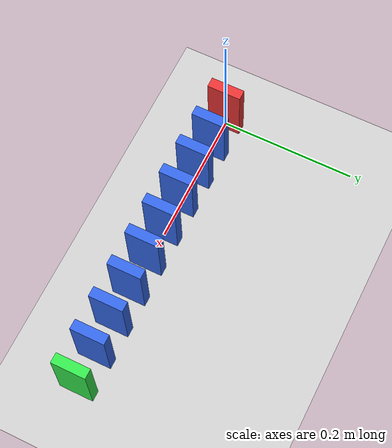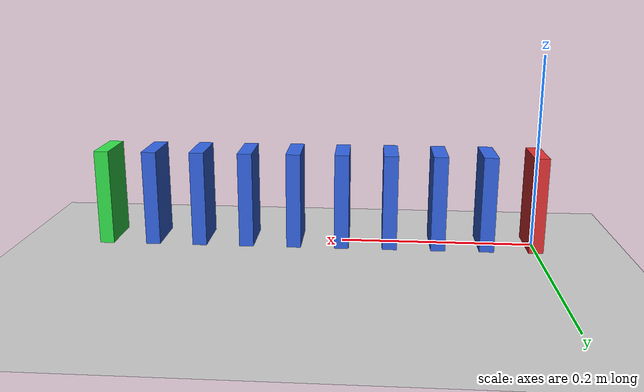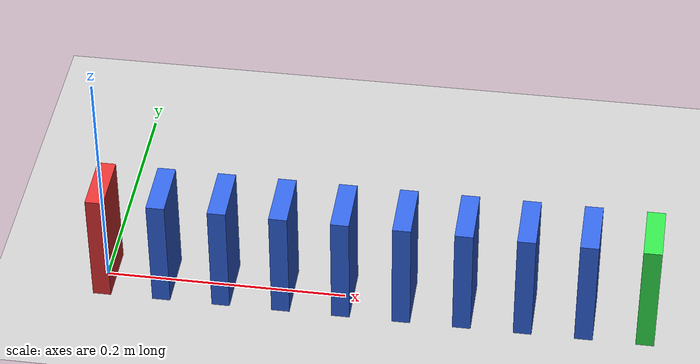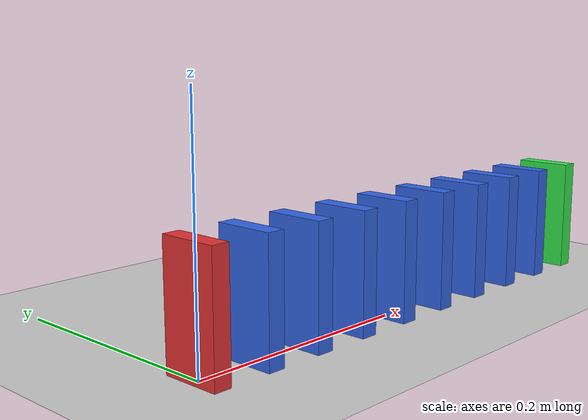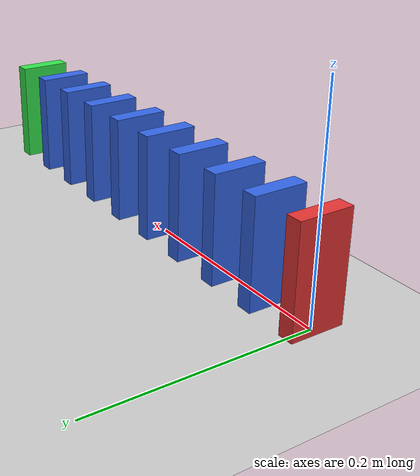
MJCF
<mujoco model="domino_row">
  <option timestep="0.002" gravity="0 0 -9.81"/>
  <visual>
    <global offwidth="1280" offheight="720"/>
  </visual>
  <worldbody>
    <light name="sun" pos="0.2 -0.5 1.5" dir="0 0.3 -1" directional="true"/>
    <camera name="side" pos="0.22 -0.7 0.25" xyaxes="1 0 0 0 0.35 1"/>
    <geom name="floor" type="plane" size="2 2 0.1" rgba="0.8 0.8 0.8 1" friction="0.8 0.005 0.0001"/>

    <body name="domino1" pos="0 0 0.05">
      <freejoint name="j1"/>
      <geom name="g1" type="box" size="0.0075 0.025 0.05" rgba="0.9 0.2 0.2 1" friction="0.6 0.005 0.0001"/>
    </body>
    <body name="domino2" pos="0.05 0 0.05">
      <freejoint name="j2"/>
      <geom name="g2" type="box" size="0.0075 0.025 0.05" rgba="0.2 0.4 0.9 1" friction="0.6 0.005 0.0001"/>
    </body>
    <body name="domino3" pos="0.10 0 0.05">
      <freejoint name="j3"/>
      <geom name="g3" type="box" size="0.0075 0.025 0.05" rgba="0.2 0.4 0.9 1" friction="0.6 0.005 0.0001"/>
    </body>
    <body name="domino4" pos="0.15 0 0.05">
      <freejoint name="j4"/>
      <geom name="g4" type="box" size="0.0075 0.025 0.05" rgba="0.2 0.4 0.9 1" friction="0.6 0.005 0.0001"/>
    </body>
    <body name="domino5" pos="0.20 0 0.05">
      <freejoint name="j5"/>
      <geom name="g5" type="box" size="0.0075 0.025 0.05" rgba="0.2 0.4 0.9 1" friction="0.6 0.005 0.0001"/>
    </body>
    <body name="domino6" pos="0.25 0 0.05">
      <freejoint name="j6"/>
      <geom name="g6" type="box" size="0.0075 0.025 0.05" rgba="0.2 0.4 0.9 1" friction="0.6 0.005 0.0001"/>
    </body>
    <body name="domino7" pos="0.30 0 0.05">
      <freejoint name="j7"/>
      <geom name="g7" type="box" size="0.0075 0.025 0.05" rgba="0.2 0.4 0.9 1" friction="0.6 0.005 0.0001"/>
    </body>
    <body name="domino8" pos="0.35 0 0.05">
      <freejoint name="j8"/>
      <geom name="g8" type="box" size="0.0075 0.025 0.05" rgba="0.2 0.4 0.9 1" friction="0.6 0.005 0.0001"/>
    </body>
    <body name="domino9" pos="0.40 0 0.05">
      <freejoint name="j9"/>
      <geom name="g9" type="box" size="0.0075 0.025 0.05" rgba="0.2 0.4 0.9 1" friction="0.6 0.005 0.0001"/>
    </body>
    <body name="domino10" pos="0.45 0 0.05">
      <freejoint name="j10"/>
      <geom name="g10" type="box" size="0.0075 0.025 0.05" rgba="0.2 0.9 0.3 1" friction="0.6 0.005 0.0001"/>
    </body>
  </worldbody>

  <keyframe>
    <key name="start" qpos="0 0 0.05 1 0 0 0  0.05 0 0.05 1 0 0 0  0.10 0 0.05 1 0 0 0  0.15 0 0.05 1 0 0 0  0.20 0 0.05 1 0 0 0  0.25 0 0.05 1 0 0 0  0.30 0 0.05 1 0 0 0  0.35 0 0.05 1 0 0 0  0.40 0 0.05 1 0 0 0  0.45 0 0.05 1 0 0 0" qvel="0.2 0 0.03 0 4 0  0 0 0 0 0 0  0 0 0 0 0 0  0 0 0 0 0 0  0 0 0 0 0 0  0 0 0 0 0 0  0 0 0 0 0 0  0 0 0 0 0 0  0 0 0 0 0 0  0 0 0 0 0 0"/>
  </keyframe>
</mujoco>
